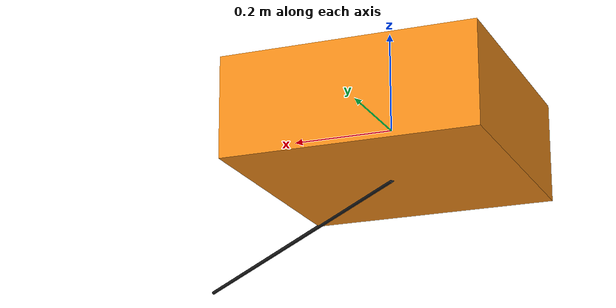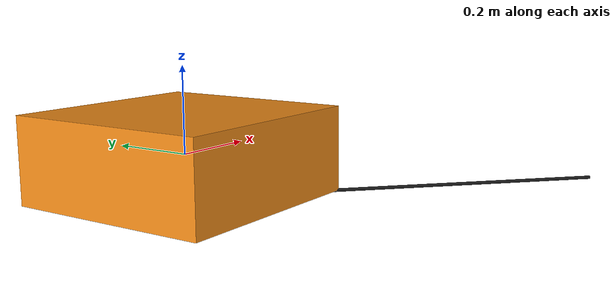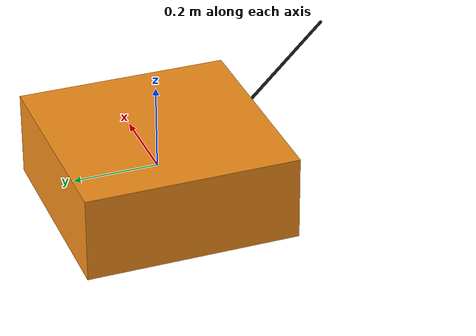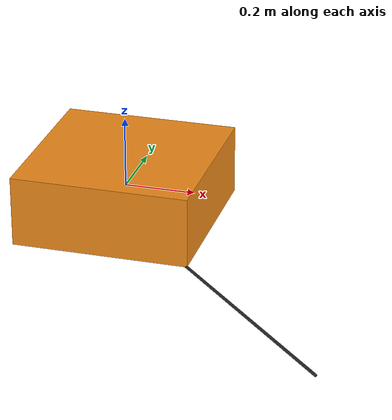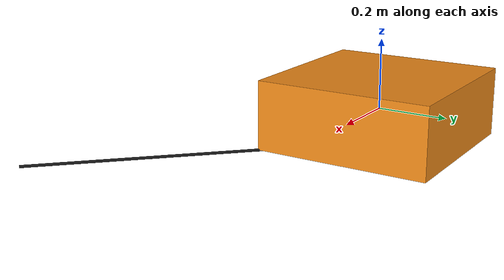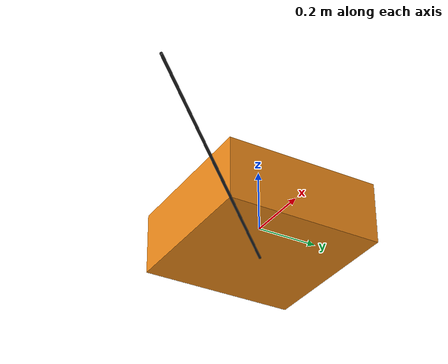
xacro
<?xml version="1.0"?>
<robot name="spherical_pendulum"
    xmlns:xacro="http://www.ros.org/wiki/xacro">

    <!-- Constants for robot dimensions -->
    <xacro:property name="PI" value="3.1415926535897931"/>
    <xacro:property name="mass" value="1" />
    <xacro:property name="base_width" value="0.5" />
    <xacro:property name="base_length" value="0.5" />
    <xacro:property name="base_height" value="0.2" />
    <xacro:property name="cable_length" value="1" />
    <xacro:property name="cable_radius" value="0.002" />

    <!-- Used for fixing robot to Gazebo 'base_link' -->
    <link name="world"/>

    <joint name="fixed" type="fixed">
        <parent link="world"/>
        <child link="fixed_base"/>
    </joint>

    <!-- Base Link -->
    <link name="fixed_base">
        <collision>
            <origin xyz="0 0 0" rpy="0 0 0"/>
            <geometry>
                <box size="${base_length} ${base_width} ${base_height}"/>
            </geometry>
        </collision>
        <visual>
            <origin xyz="0 0 0" rpy="0 0 0"/>
            <geometry>
                <box size="${base_length} ${base_width} ${base_height}"/>
            </geometry>
            <material name="orange"/>
        </visual>
        <inertial>
            <origin xyz="0 0 0" rpy="0 0 0"/>
            <mass value="${mass}"/>
            <inertia ixx="0.001" ixy="0.0" ixz="0.0" iyy="0.001" iyz="0.0" izz="0.001"/>
        </inertial>
    </link>

    <!-- MACRO: dummy link to create 3D rotation (in Euler Angles) -->
    <xacro:macro name="dummy_link" params="name">
        <link name="${name}">
            <gravity>0</gravity>
            <inertial>
                <origin rpy="0 0 0" xyz="0 0 0"/>
                <mass value="0.00001"/>
                <inertia ixx="0.000000001" ixy="0" ixz="0" iyy="0.000000001" iyz="0" izz="0.000000001"/>
            </inertial>
            <visual>
                <geometry>
                    <sphere radius="0.001"/>
                </geometry>
            </visual>
        </link>
        <gazebo reference="${name}">
            <material>Gazebo/Black</material>
        </gazebo>
    </xacro:macro>

    <!-- MACRO: create a rotational joint ( TODO: debug this joint) -->
    <xacro:macro name="rotational_joint" params="parent child jx jy jz r p y">
        <xacro:dummy_link name="${parent}_${child}_dummylink1"/>
        <xacro:dummy_link name="${parent}_${child}_dummylink2"/>
        <joint name="${parent}_${child}_roll" type="continuous">
            <parent link="${parent}"/>
            <child link="${parent}_${child}_dummylink1"/>
            <axis xyz="1 0 0"/>
            <dynamics damping="0.0" friction="0.0"/>
            <origin xyz="${jx} ${jy} ${jz}" rpy="${r} 0 0"/>
        </joint>
        <joint name="${parent}_${child}_pitch" type="continuous">
            <parent link="${parent}_${child}_dummylink1"/>
            <child link="${parent}_${child}_dummylink2"/>
            <axis xyz="0 1 0"/>

            <dynamics damping="0.0" friction="0.0"/>
            <origin xyz="0 0 0" rpy="0 ${p} 0"/>
        </joint>
        <joint name="${parent}_${child}_yaw" type="continuous">
            <parent link="${parent}_${child}_dummylink2"/>
            <child link="${child}"/>
            <axis xyz="0 0 1"/>

            <dynamics damping="0.0" friction="0.0"/>
            <origin xyz="0 0 0" rpy="0 0 ${y}"/>
        </joint>
    </xacro:macro>

    <link name="cable">
        <collision>
            <origin xyz="0 0 ${cable_length/2}" rpy="0 0 0"/>
            <geometry>
                <cylinder length="${cable_length}" radius="${cable_radius}"/>
            </geometry>
            <surface>
                <bounce restitution_coefficient = "0"/>
            </surface>
        </collision>
        <visual>
            <origin xyz="0 0 ${cable_length/2}" rpy="0 0 0"/>
            <geometry>
                <cylinder length="${cable_length}" radius="${2*cable_radius}"/>
            </geometry>
        </visual>
        <inertial>
            <origin xyz="0 0 ${cable_length/2}" rpy="0 0 0"/>
            <mass value="5"/>
            <inertia ixx="0.0001" ixy="0.0" ixz="0.0" iyy="0.0001" iyz="0.0" izz="0.0004"/>
        </inertial>
    </link>
    <gazebo reference="cable">
        <material>Gazebo/Black</material>
        <self_collide>0</self_collide>
    </gazebo>

    <xacro:rotational_joint parent="fixed_base" child="cable" jx="0" jy="0" jz="${-base_height/2}" r="${PI/2}" p="${PI/4}" y="${PI/4}"/>

</robot>
